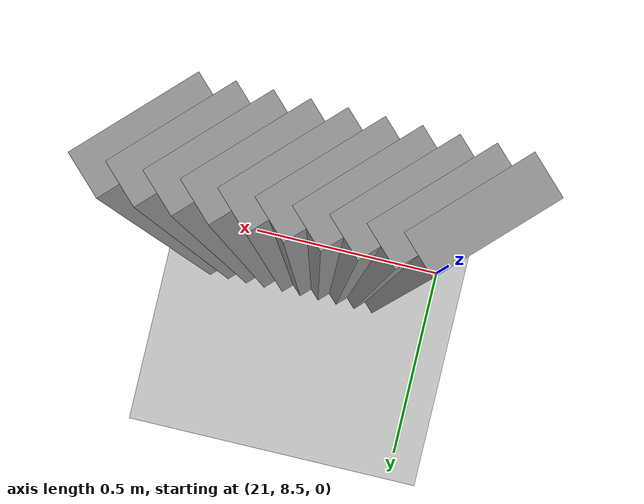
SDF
<sdf version="1.5">
 <world name="default">
  <include><uri>model://ground_plane</uri></include>
  <include><uri>model://sun</uri></include>
  <model name="grey_wall_3997">
   <static>1</static>
   <link name="link">
    <pose>21.1 8.55  1.4 0 0 -0.785398163397</pose>
    <collision name="collision"><geometry><box><size>0.0707106781187 .2  2.8</size></box></geometry></collision>
    <visual name="visual">
     <cast_shadows>0</cast_shadows>
     <geometry><box><size>0.0707106781187 .2  2.8</size></box></geometry>
     <material>
      <script>
       <uri>model://grey_wall/materials/scripts</uri>
       <uri>model://grey_wall/materials/textures</uri>
       <name>vrc/grey_wall</name>
      </script>
     </material>
    </visual>
   </link>
  </model>
  <model name="grey_wall_3998">
   <static>1</static>
   <link name="link">
    <pose>21.15 8.55  1.4 0 0 -0.785398163397</pose>
    <collision name="collision"><geometry><box><size>0.0707106781187 .2  2.8</size></box></geometry></collision>
    <visual name="visual">
     <cast_shadows>0</cast_shadows>
     <geometry><box><size>0.0707106781187 .2  2.8</size></box></geometry>
     <material>
      <script>
       <uri>model://grey_wall/materials/scripts</uri>
       <uri>model://grey_wall/materials/textures</uri>
       <name>vrc/grey_wall</name>
      </script>
     </material>
    </visual>
   </link>
  </model>
  <model name="grey_wall_3999">
   <static>1</static>
   <link name="link">
    <pose>21.2 8.55  1.4 0 0 -0.785398163397</pose>
    <collision name="collision"><geometry><box><size>0.0707106781187 .2  2.8</size></box></geometry></collision>
    <visual name="visual">
     <cast_shadows>0</cast_shadows>
     <geometry><box><size>0.0707106781187 .2  2.8</size></box></geometry>
     <material>
      <script>
       <uri>model://grey_wall/materials/scripts</uri>
       <uri>model://grey_wall/materials/textures</uri>
       <name>vrc/grey_wall</name>
      </script>
     </material>
    </visual>
   </link>
  </model>
  <model name="grey_wall_4000">
   <static>1</static>
   <link name="link">
    <pose>21.25 8.55  1.4 0 0 -0.785398163397</pose>
    <collision name="collision"><geometry><box><size>0.0707106781187 .2  2.8</size></box></geometry></collision>
    <visual name="visual">
     <cast_shadows>0</cast_shadows>
     <geometry><box><size>0.0707106781187 .2  2.8</size></box></geometry>
     <material>
      <script>
       <uri>model://grey_wall/materials/scripts</uri>
       <uri>model://grey_wall/materials/textures</uri>
       <name>vrc/grey_wall</name>
      </script>
     </material>
    </visual>
   </link>
  </model>
  <model name="grey_wall_4001">
   <static>1</static>
   <link name="link">
    <pose>21.3 8.55  1.4 0 0 -0.785398163397</pose>
    <collision name="collision"><geometry><box><size>0.0707106781187 .2  2.8</size></box></geometry></collision>
    <visual name="visual">
     <cast_shadows>0</cast_shadows>
     <geometry><box><size>0.0707106781187 .2  2.8</size></box></geometry>
     <material>
      <script>
       <uri>model://grey_wall/materials/scripts</uri>
       <uri>model://grey_wall/materials/textures</uri>
       <name>vrc/grey_wall</name>
      </script>
     </material>
    </visual>
   </link>
  </model>
  <model name="grey_wall_4002">
   <static>1</static>
   <link name="link">
    <pose>21.35 8.55  1.4 0 0 -0.785398163397</pose>
    <collision name="collision"><geometry><box><size>0.0707106781187 .2  2.8</size></box></geometry></collision>
    <visual name="visual">
     <cast_shadows>0</cast_shadows>
     <geometry><box><size>0.0707106781187 .2  2.8</size></box></geometry>
     <material>
      <script>
       <uri>model://grey_wall/materials/scripts</uri>
       <uri>model://grey_wall/materials/textures</uri>
       <name>vrc/grey_wall</name>
      </script>
     </material>
    </visual>
   </link>
  </model>
  <model name="grey_wall_4003">
   <static>1</static>
   <link name="link">
    <pose>21.4 8.55  1.4 0 0 -0.785398163397</pose>
    <collision name="collision"><geometry><box><size>0.0707106781187 .2  2.8</size></box></geometry></collision>
    <visual name="visual">
     <cast_shadows>0</cast_shadows>
     <geometry><box><size>0.0707106781187 .2  2.8</size></box></geometry>
     <material>
      <script>
       <uri>model://grey_wall/materials/scripts</uri>
       <uri>model://grey_wall/materials/textures</uri>
       <name>vrc/grey_wall</name>
      </script>
     </material>
    </visual>
   </link>
  </model>
  <model name="grey_wall_4004">
   <static>1</static>
   <link name="link">
    <pose>21.45 8.55  1.4 0 0 -0.785398163397</pose>
    <collision name="collision"><geometry><box><size>0.0707106781187 .2  2.8</size></box></geometry></collision>
    <visual name="visual">
     <cast_shadows>0</cast_shadows>
     <geometry><box><size>0.0707106781187 .2  2.8</size></box></geometry>
     <material>
      <script>
       <uri>model://grey_wall/materials/scripts</uri>
       <uri>model://grey_wall/materials/textures</uri>
       <name>vrc/grey_wall</name>
      </script>
     </material>
    </visual>
   </link>
  </model>
  <model name="grey_wall_4005">
   <static>1</static>
   <link name="link">
    <pose>21.5 8.55  1.4 0 0 -0.785398163397</pose>
    <collision name="collision"><geometry><box><size>0.0707106781187 .2  2.8</size></box></geometry></collision>
    <visual name="visual">
     <cast_shadows>0</cast_shadows>
     <geometry><box><size>0.0707106781187 .2  2.8</size></box></geometry>
     <material>
      <script>
       <uri>model://grey_wall/materials/scripts</uri>
       <uri>model://grey_wall/materials/textures</uri>
       <name>vrc/grey_wall</name>
      </script>
     </material>
    </visual>
   </link>
  </model>
  <model name="grey_wall_4006">
   <static>1</static>
   <link name="link">
    <pose>21.55 8.55  1.4 0 0 -0.785398163397</pose>
    <collision name="collision"><geometry><box><size>0.0707106781187 .2  2.8</size></box></geometry></collision>
    <visual name="visual">
     <cast_shadows>0</cast_shadows>
     <geometry><box><size>0.0707106781187 .2  2.8</size></box></geometry>
     <material>
      <script>
       <uri>model://grey_wall/materials/scripts</uri>
       <uri>model://grey_wall/materials/textures</uri>
       <name>vrc/grey_wall</name>
      </script>
     </material>
    </visual>
   </link>
  </model>
 </world>
</sdf>
